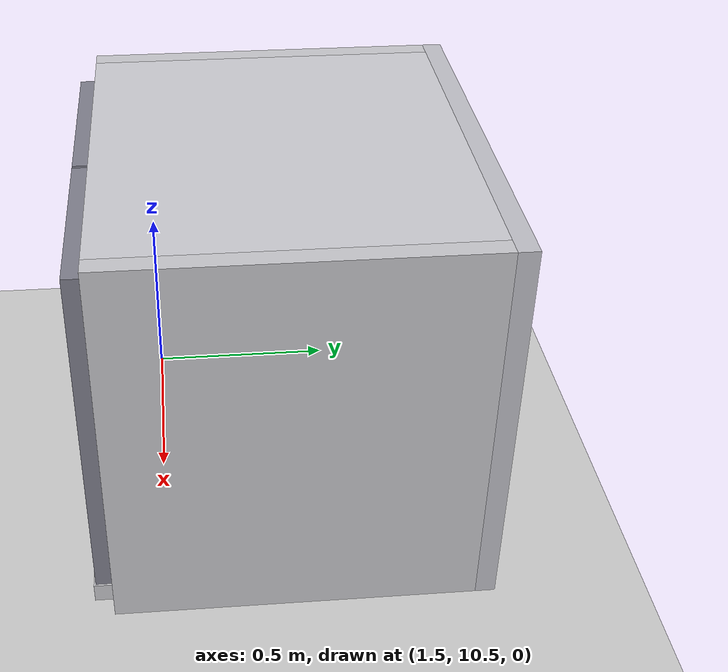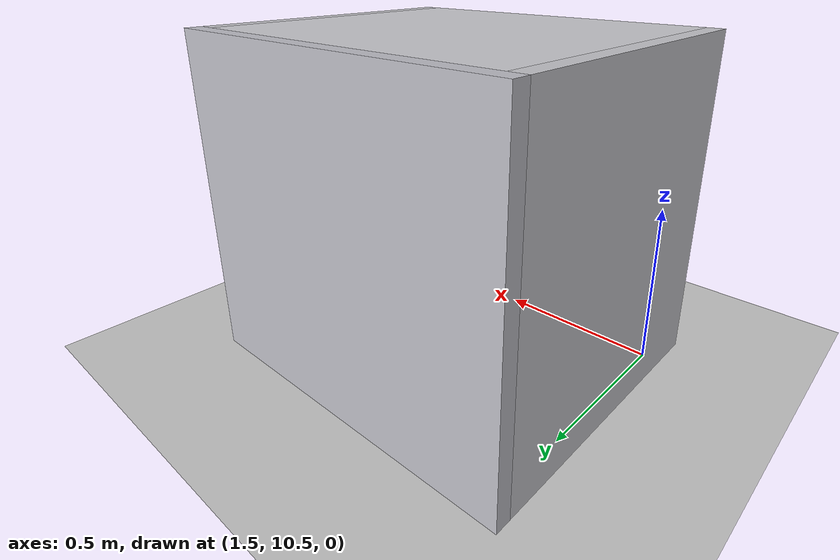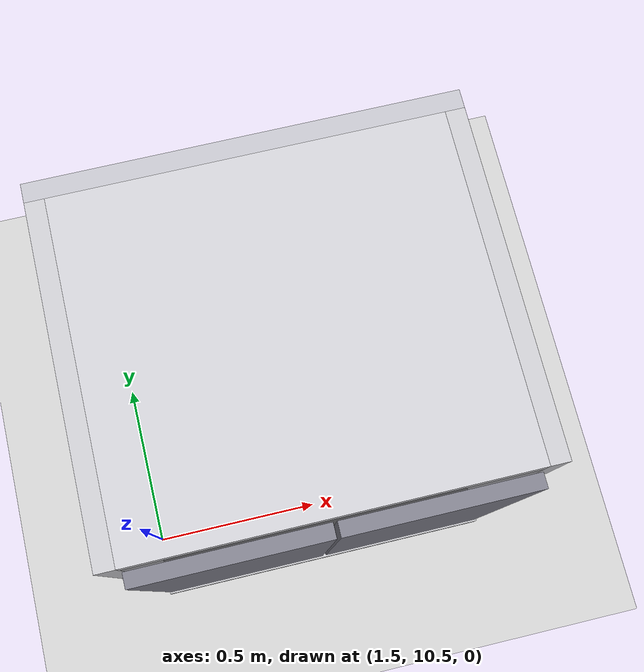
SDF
<sdf version="1.7">
 <world name="default">
  <model name="ground_plane">
   <static>1</static>
   <link name="link">
    <collision name="collision">
     <geometry><plane><normal>0 0 1</normal><size>100 100</size></plane></geometry>
     <surface><friction><ode><mu>100</mu><mu2>50</mu2></ode></friction></surface>
    </collision>
    <visual name="visual">
     <cast_shadows>0</cast_shadows>
     <geometry><plane><normal>0 0 1</normal><size>100 100</size></plane></geometry>
     <material>
      <script><uri>file://media/materials/scripts/gazebo.material</uri><name>Gazebo/Grey</name></script>
     </material>
    </visual>
   </link>
   <pose>-9.56672 -8.6074 0 0 -0 0</pose>
  </model>
  <model name="elevator">
   <pose>1.99603 10.8249 0 0 -0 3.14159</pose>
   <static>0</static>
   <link name="floor">
    <pose>0 0 0.025 0 -0 0</pose>
    <visual name="floor_v">
     <geometry><box><size>1 0.9 0.05</size></box></geometry>
     <material>
      <ambient>0.12 0.12 0.12 1</ambient>
      <diffuse>0.24 0.24 0.25 1</diffuse>
      <specular>0.2 0.2 0.2 1</specular>
      <emissive>0 0 0 1</emissive>
      <lighting>1</lighting>
     </material>
    </visual>
    <collision name="floor_c"><geometry><box><size>1 0.9 0.05</size></box></geometry></collision>
    <inertial>
     <mass>5</mass>
     <inertia><ixx>1</ixx><ixy>0</ixy><ixz>0</ixz><iyy>1</iyy><iyz>0</iyz><izz>1</izz></inertia>
    </inertial>
   </link>
   <link name="ceiling">
    <pose>0 0 0.975 0 -0 0</pose>
    <visual name="ceiling_v">
     <geometry><box><size>1 0.9 0.05</size></box></geometry>
     <material>
      <ambient>0.4 0.4 0.42 1</ambient>
      <diffuse>0.8 0.8 0.82 1</diffuse>
      <specular>0.5 0.5 0.5 1</specular>
      <emissive>0 0 0 1</emissive>
      <lighting>1</lighting>
     </material>
    </visual>
    <collision name="ceiling_c"><geometry><box><size>1 0.9 0.05</size></box></geometry></collision>
    <inertial>
     <mass>5</mass>
     <inertia><ixx>1</ixx><ixy>0</ixy><ixz>0</ixz><iyy>1</iyy><iyz>0</iyz><izz>1</izz></inertia>
    </inertial>
   </link>
   <link name="wall_back">
    <pose>0 -0.475 0.5 0 -0 0</pose>
    <visual name="wall_back_v">
     <geometry><box><size>1.1 0.05 1</size></box></geometry>
     <material>
      <ambient>0.35 0.35 0.37 1</ambient>
      <diffuse>0.75 0.75 0.78 1</diffuse>
      <specular>0.6 0.6 0.6 1</specular>
      <emissive>0 0 0 1</emissive>
      <lighting>1</lighting>
     </material>
    </visual>
    <collision name="wall_back_c"><geometry><box><size>1.1 0.05 1</size></box></geometry></collision>
    <inertial>
     <mass>8</mass>
     <inertia><ixx>1</ixx><ixy>0</ixy><ixz>0</ixz><iyy>1</iyy><iyz>0</iyz><izz>1</izz></inertia>
    </inertial>
   </link>
   <link name="wall_left">
    <pose>-0.525 0 0.5 0 -0 0</pose>
    <visual name="wall_left_v">
     <geometry><box><size>0.05 0.9 1</size></box></geometry>
     <material>
      <ambient>0.38 0.38 0.4 1</ambient>
      <diffuse>0.78 0.78 0.8 1</diffuse>
      <specular>0.55 0.55 0.55 1</specular>
      <emissive>0 0 0 1</emissive>
      <lighting>1</lighting>
     </material>
    </visual>
    <collision name="wall_left_c"><geometry><box><size>0.05 0.9 1</size></box></geometry></collision>
    <inertial>
     <mass>7.7</mass>
     <inertia><ixx>1</ixx><ixy>0</ixy><ixz>0</ixz><iyy>1</iyy><iyz>0</iyz><izz>1</izz></inertia>
    </inertial>
   </link>
   <link name="wall-right">
    <pose>0.525 0 0.5 0 -0 0</pose>
    <visual name="wall_right_v">
     <geometry><box><size>0.05 0.9 1</size></box></geometry>
     <material>
      <ambient>0.38 0.38 0.4 1</ambient>
      <diffuse>0.78 0.78 0.8 1</diffuse>
      <specular>0.55 0.55 0.55 1</specular>
      <emissive>0 0 0 1</emissive>
      <lighting>1</lighting>
     </material>
    </visual>
    <collision name="wall_right_c"><geometry><box><size>0.05 0.9 1</size></box></geometry></collision>
    <inertial>
     <mass>7.7</mass>
     <inertia><ixx>1</ixx><ixy>0</ixy><ixz>0</ixz><iyy>1</iyy><iyz>0</iyz><izz>1</izz></inertia>
    </inertial>
   </link>
   <link name="lift">
    <inertial>
     <mass>12</mass>
     <inertia><ixx>1</ixx><ixy>0</ixy><ixz>0</ixz><iyy>1</iyy><iyz>0</iyz><izz>1</izz></inertia>
    </inertial>
   </link>
   <joint name="fix_floor" type="fixed"><parent>lift</parent><child>floor</child></joint>
   <joint name="fix_ceiling" type="fixed"><parent>lift</parent><child>ceiling</child></joint>
   <joint name="fix_back" type="fixed"><parent>lift</parent><child>wall_back</child></joint>
   <joint name="fix_left" type="fixed"><parent>lift</parent><child>wall_left</child></joint>
   <joint name="fix_right" type="fixed"><parent>lift</parent><child>wall-right</child></joint>
   <link name="door_left">
    <pose>-0.25 0.475 0.5 0 -0 0</pose>
    <visual name="door_left_v">
     <geometry><box><size>0.49 0.04 0.9</size></box></geometry>
     <material>
      <ambient>0.2 0.2 0.22 1</ambient>
      <diffuse>0.5 0.5 0.55 1</diffuse>
      <specular>0.9 0.9 0.9 1</specular>
      <emissive>0 0 0 1</emissive>
      <lighting>1</lighting>
     </material>
    </visual>
    <collision name="door_left_c"><geometry><box><size>0.49 0.04 0.9</size></box></geometry></collision>
    <inertial>
     <mass>4</mass>
     <inertia><ixx>1</ixx><ixy>0</ixy><ixz>0</ixz><iyy>1</iyy><iyz>0</iyz><izz>1</izz></inertia>
    </inertial>
   </link>
   <link name="door_right">
    <pose>0.25 0.475 0.5 0 -0 0</pose>
    <visual name="door_right_v">
     <geometry><box><size>0.49 0.04 0.9</size></box></geometry>
     <material>
      <ambient>0.2 0.2 0.22 1</ambient>
      <diffuse>0.5 0.5 0.55 1</diffuse>
      <specular>0.9 0.9 0.9 1</specular>
      <emissive>0 0 0 1</emissive>
      <lighting>1</lighting>
     </material>
    </visual>
    <collision name="door_right_c"><geometry><box><size>0.49 0.04 0.9</size></box></geometry></collision>
    <inertial>
     <mass>4</mass>
     <inertia><ixx>1</ixx><ixy>0</ixy><ixz>0</ixz><iyy>1</iyy><iyz>0</iyz><izz>1</izz></inertia>
    </inertial>
   </link>
   <joint name="lift_joint" type="prismatic">
    <parent>world</parent>
    <child>lift</child>
    <axis>
     <xyz>0 0 1</xyz>
     <limit><lower>0</lower><upper>3</upper></limit>
     <dynamics><spring_reference>0</spring_reference><spring_stiffness>0</spring_stiffness></dynamics>
    </axis>
   </joint>
   <joint name="door_left_joint" type="prismatic">
    <parent>lift</parent>
    <child>door_left</child>
    <axis>
     <xyz>1 0 0</xyz>
     <limit><lower>-0.5</lower><upper>0</upper></limit>
     <dynamics><spring_reference>0</spring_reference><spring_stiffness>0</spring_stiffness></dynamics>
    </axis>
   </joint>
   <joint name="door_right_joint" type="prismatic">
    <parent>lift</parent>
    <child>door_right</child>
    <axis>
     <xyz>-1 0 0</xyz>
     <limit><lower>-0.5</lower><upper>0</upper></limit>
     <dynamics><spring_reference>0</spring_reference><spring_stiffness>0</spring_stiffness></dynamics>
    </axis>
   </joint>
   <link name="door_sill">
    <pose>0 0.475 0.025 0 -0 0</pose>
    <visual name="door_sill_v">
     <geometry><box><size>1 0.05 0.05</size></box></geometry>
     <material>
      <ambient>0.38 0.38 0.4 1</ambient>
      <diffuse>0.78 0.78 0.8 1</diffuse>
      <specular>0.55 0.55 0.55 1</specular>
      <emissive>0 0 0 1</emissive>
      <lighting>1</lighting>
     </material>
    </visual>
    <collision name="door_sill_c"><geometry><box><size>1 0.05 0.05</size></box></geometry></collision>
    <inertial>
     <mass>1</mass>
     <inertia><ixx>1</ixx><ixy>0</ixy><ixz>0</ixz><iyy>1</iyy><iyz>0</iyz><izz>1</izz></inertia>
    </inertial>
   </link>
   <joint name="fix_sill" type="fixed"><parent>lift</parent><child>door_sill</child></joint>
   <plugin name="elevator_controller" filename="libElevatorRos2Plugin.so">
    <ros><namespace>/elevator</namespace></ros>
   </plugin>
   <plugin name="elevator_coordinator" filename="libCoordinatorRos2Plugin.so">
    <elevator_ns>elevator</elevator_ns>
    <ros><namespace>elevator</namespace></ros>
   </plugin>
  </model>
 </world>
</sdf>
